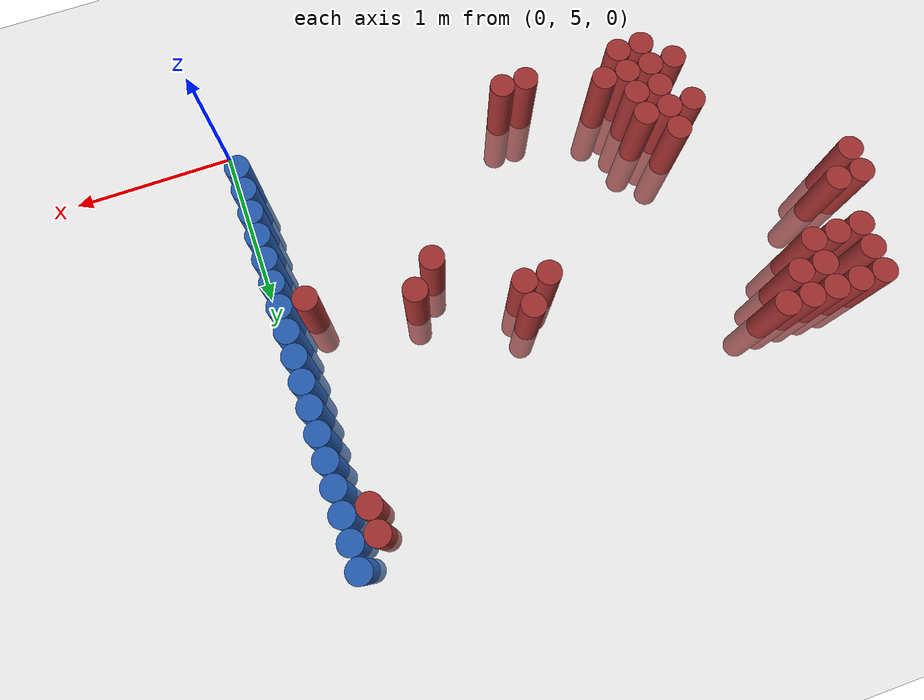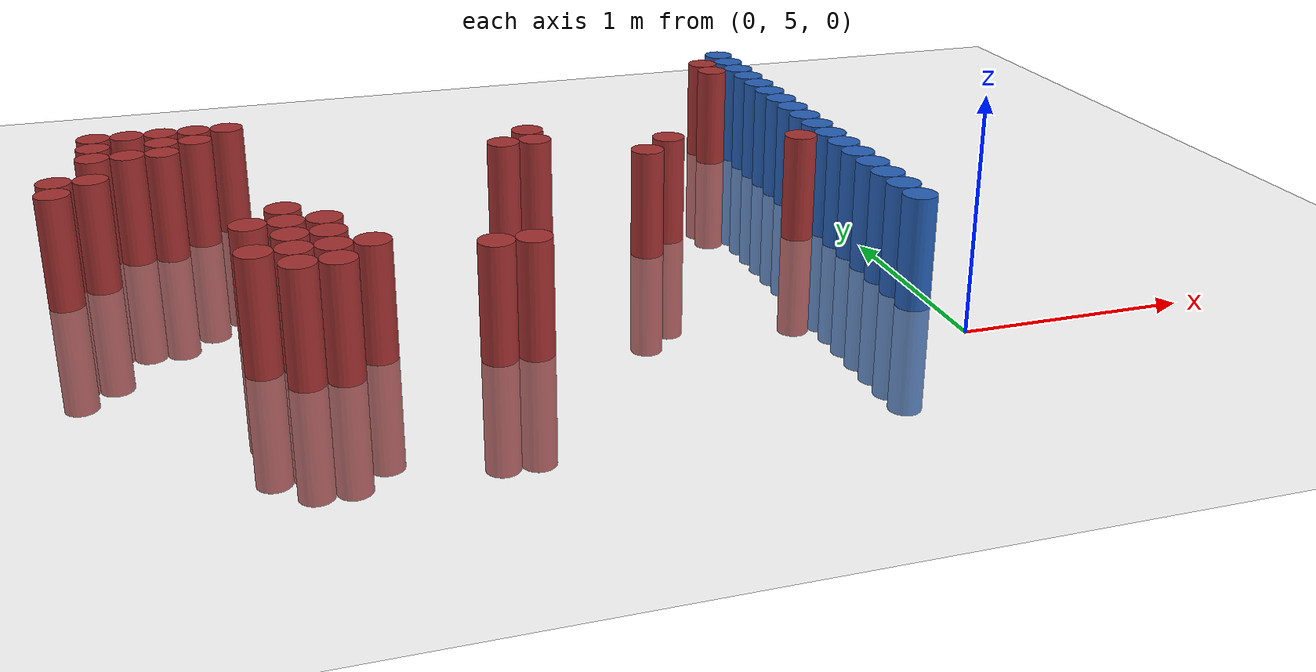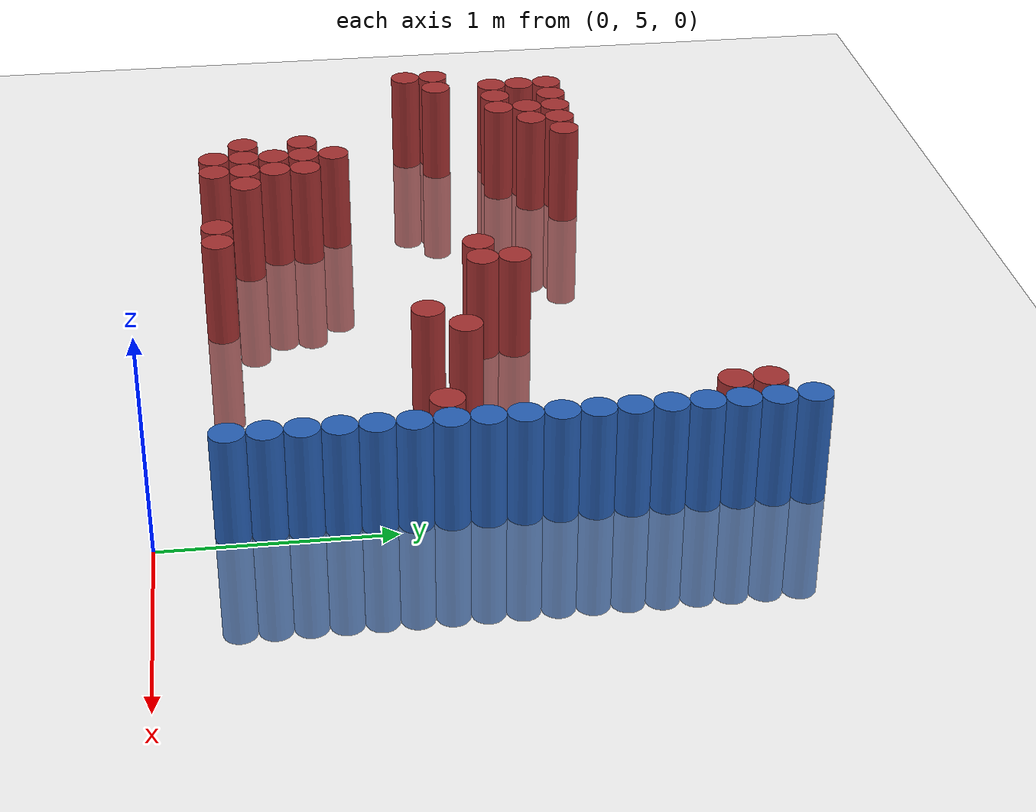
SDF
<sdf version="1.6">
 <world name="default">
  <model name="ground_plane">
   <static>1</static>
   <link name="link">
    <collision name="collision">
     <geometry><plane><normal>0 0 1</normal><size>100 100</size></plane></geometry>
     <surface><friction><ode><mu>100</mu><mu2>50</mu2></ode></friction></surface>
    </collision>
    <visual name="visual">
     <cast_shadows>0</cast_shadows>
     <geometry><plane><normal>0 0 1</normal><size>100 100</size></plane></geometry>
     <material>
      <script><uri>file://media/materials/scripts/gazebo.material</uri><name>Gazebo/Grey</name></script>
     </material>
    </visual>
   </link>
  </model>
  <model name="unit_cylinder_155">
   <static>1</static>
   <pose>-3.525000 6.375000 0.000000 0.000000 0.000000 0.000000</pose>
   <link name="link">
    <inertial>
     <mass>1</mass>
     <inertia><ixx>0.145833</ixx><ixy>0</ixy><ixz>0</ixz><iyy>0.145833</iyy><iyz>0</iyz><izz>0.125</izz></inertia>
    </inertial>
    <collision name="collision">
     <geometry><cylinder><radius>0.075000</radius><length>1</length></cylinder></geometry>
    </collision>
    <visual name="visual">
     <geometry><cylinder><radius>0.075000</radius><length>1</length></cylinder></geometry>
     <material>
      <ambient>0.648000 0.192000 0.192000 1</ambient>
      <diffuse>0.648000 0.192000 0.192000 1</diffuse>
     </material>
     <material>
      <script><name>Gazebo/Grey</name><uri>file://media/materials/scripts/gazebo.material</uri></script>
     </material>
    </visual>
   </link>
  </model>
  <model name="unit_cylinder_156">
   <static>1</static>
   <pose>-3.525000 6.525000 0.000000 0.000000 0.000000 0.000000</pose>
   <link name="link">
    <inertial>
     <mass>1</mass>
     <inertia><ixx>0.145833</ixx><ixy>0</ixy><ixz>0</ixz><iyy>0.145833</iyy><iyz>0</iyz><izz>0.125</izz></inertia>
    </inertial>
    <collision name="collision">
     <geometry><cylinder><radius>0.075000</radius><length>1</length></cylinder></geometry>
    </collision>
    <visual name="visual">
     <geometry><cylinder><radius>0.075000</radius><length>1</length></cylinder></geometry>
     <material>
      <ambient>0.648000 0.192000 0.192000 1</ambient>
      <diffuse>0.648000 0.192000 0.192000 1</diffuse>
     </material>
     <material>
      <script><name>Gazebo/Grey</name><uri>file://media/materials/scripts/gazebo.material</uri></script>
     </material>
    </visual>
   </link>
  </model>
  <model name="unit_cylinder_159">
   <static>1</static>
   <pose>-3.375000 6.525000 0.000000 0.000000 0.000000 0.000000</pose>
   <link name="link">
    <inertial>
     <mass>1</mass>
     <inertia><ixx>0.145833</ixx><ixy>0</ixy><ixz>0</ixz><iyy>0.145833</iyy><iyz>0</iyz><izz>0.125</izz></inertia>
    </inertial>
    <collision name="collision">
     <geometry><cylinder><radius>0.075000</radius><length>1</length></cylinder></geometry>
    </collision>
    <visual name="visual">
     <geometry><cylinder><radius>0.075000</radius><length>1</length></cylinder></geometry>
     <material>
      <ambient>0.648000 0.192000 0.192000 1</ambient>
      <diffuse>0.648000 0.192000 0.192000 1</diffuse>
     </material>
     <material>
      <script><name>Gazebo/Grey</name><uri>file://media/materials/scripts/gazebo.material</uri></script>
     </material>
    </visual>
   </link>
  </model>
  <model name="unit_cylinder_160">
   <static>1</static>
   <pose>-3.375000 6.825000 0.000000 0.000000 0.000000 0.000000</pose>
   <link name="link">
    <inertial>
     <mass>1</mass>
     <inertia><ixx>0.145833</ixx><ixy>0</ixy><ixz>0</ixz><iyy>0.145833</iyy><iyz>0</iyz><izz>0.125</izz></inertia>
    </inertial>
    <collision name="collision">
     <geometry><cylinder><radius>0.075000</radius><length>1</length></cylinder></geometry>
    </collision>
    <visual name="visual">
     <geometry><cylinder><radius>0.075000</radius><length>1</length></cylinder></geometry>
     <material>
      <ambient>0.648000 0.192000 0.192000 1</ambient>
      <diffuse>0.648000 0.192000 0.192000 1</diffuse>
     </material>
     <material>
      <script><name>Gazebo/Grey</name><uri>file://media/materials/scripts/gazebo.material</uri></script>
     </material>
    </visual>
   </link>
  </model>
  <model name="unit_cylinder_161">
   <static>1</static>
   <pose>-3.375000 6.975000 0.000000 0.000000 0.000000 0.000000</pose>
   <link name="link">
    <inertial>
     <mass>1</mass>
     <inertia><ixx>0.145833</ixx><ixy>0</ixy><ixz>0</ixz><iyy>0.145833</iyy><iyz>0</iyz><izz>0.125</izz></inertia>
    </inertial>
    <collision name="collision">
     <geometry><cylinder><radius>0.075000</radius><length>1</length></cylinder></geometry>
    </collision>
    <visual name="visual">
     <geometry><cylinder><radius>0.075000</radius><length>1</length></cylinder></geometry>
     <material>
      <ambient>0.648000 0.192000 0.192000 1</ambient>
      <diffuse>0.648000 0.192000 0.192000 1</diffuse>
     </material>
     <material>
      <script><name>Gazebo/Grey</name><uri>file://media/materials/scripts/gazebo.material</uri></script>
     </material>
    </visual>
   </link>
  </model>
  <model name="unit_cylinder_162">
   <static>1</static>
   <pose>-3.375000 7.125000 0.000000 0.000000 0.000000 0.000000</pose>
   <link name="link">
    <inertial>
     <mass>1</mass>
     <inertia><ixx>0.145833</ixx><ixy>0</ixy><ixz>0</ixz><iyy>0.145833</iyy><iyz>0</iyz><izz>0.125</izz></inertia>
    </inertial>
    <collision name="collision">
     <geometry><cylinder><radius>0.075000</radius><length>1</length></cylinder></geometry>
    </collision>
    <visual name="visual">
     <geometry><cylinder><radius>0.075000</radius><length>1</length></cylinder></geometry>
     <material>
      <ambient>0.648000 0.192000 0.192000 1</ambient>
      <diffuse>0.648000 0.192000 0.192000 1</diffuse>
     </material>
     <material>
      <script><name>Gazebo/Grey</name><uri>file://media/materials/scripts/gazebo.material</uri></script>
     </material>
    </visual>
   </link>
  </model>
  <model name="unit_cylinder_165">
   <static>1</static>
   <pose>-3.225000 6.825000 0.000000 0.000000 0.000000 0.000000</pose>
   <link name="link">
    <inertial>
     <mass>1</mass>
     <inertia><ixx>0.145833</ixx><ixy>0</ixy><ixz>0</ixz><iyy>0.145833</iyy><iyz>0</iyz><izz>0.125</izz></inertia>
    </inertial>
    <collision name="collision">
     <geometry><cylinder><radius>0.075000</radius><length>1</length></cylinder></geometry>
    </collision>
    <visual name="visual">
     <geometry><cylinder><radius>0.075000</radius><length>1</length></cylinder></geometry>
     <material>
      <ambient>0.648000 0.192000 0.192000 1</ambient>
      <diffuse>0.648000 0.192000 0.192000 1</diffuse>
     </material>
     <material>
      <script><name>Gazebo/Grey</name><uri>file://media/materials/scripts/gazebo.material</uri></script>
     </material>
    </visual>
   </link>
  </model>
  <model name="unit_cylinder_166">
   <static>1</static>
   <pose>-3.225000 7.125000 0.000000 0.000000 0.000000 0.000000</pose>
   <link name="link">
    <inertial>
     <mass>1</mass>
     <inertia><ixx>0.145833</ixx><ixy>0</ixy><ixz>0</ixz><iyy>0.145833</iyy><iyz>0</iyz><izz>0.125</izz></inertia>
    </inertial>
    <collision name="collision">
     <geometry><cylinder><radius>0.075000</radius><length>1</length></cylinder></geometry>
    </collision>
    <visual name="visual">
     <geometry><cylinder><radius>0.075000</radius><length>1</length></cylinder></geometry>
     <material>
      <ambient>0.648000 0.192000 0.192000 1</ambient>
      <diffuse>0.648000 0.192000 0.192000 1</diffuse>
     </material>
     <material>
      <script><name>Gazebo/Grey</name><uri>file://media/materials/scripts/gazebo.material</uri></script>
     </material>
    </visual>
   </link>
  </model>
  <model name="unit_cylinder_168">
   <static>1</static>
   <pose>-3.075000 6.825000 0.000000 0.000000 0.000000 0.000000</pose>
   <link name="link">
    <inertial>
     <mass>1</mass>
     <inertia><ixx>0.145833</ixx><ixy>0</ixy><ixz>0</ixz><iyy>0.145833</iyy><iyz>0</iyz><izz>0.125</izz></inertia>
    </inertial>
    <collision name="collision">
     <geometry><cylinder><radius>0.075000</radius><length>1</length></cylinder></geometry>
    </collision>
    <visual name="visual">
     <geometry><cylinder><radius>0.075000</radius><length>1</length></cylinder></geometry>
     <material>
      <ambient>0.648000 0.192000 0.192000 1</ambient>
      <diffuse>0.648000 0.192000 0.192000 1</diffuse>
     </material>
     <material>
      <script><name>Gazebo/Grey</name><uri>file://media/materials/scripts/gazebo.material</uri></script>
     </material>
    </visual>
   </link>
  </model>
  <model name="unit_cylinder_169">
   <static>1</static>
   <pose>-3.075000 6.975000 0.000000 0.000000 0.000000 0.000000</pose>
   <link name="link">
    <inertial>
     <mass>1</mass>
     <inertia><ixx>0.145833</ixx><ixy>0</ixy><ixz>0</ixz><iyy>0.145833</iyy><iyz>0</iyz><izz>0.125</izz></inertia>
    </inertial>
    <collision name="collision">
     <geometry><cylinder><radius>0.075000</radius><length>1</length></cylinder></geometry>
    </collision>
    <visual name="visual">
     <geometry><cylinder><radius>0.075000</radius><length>1</length></cylinder></geometry>
     <material>
      <ambient>0.648000 0.192000 0.192000 1</ambient>
      <diffuse>0.648000 0.192000 0.192000 1</diffuse>
     </material>
     <material>
      <script><name>Gazebo/Grey</name><uri>file://media/materials/scripts/gazebo.material</uri></script>
     </material>
    </visual>
   </link>
  </model>
  <model name="unit_cylinder_170">
   <static>1</static>
   <pose>-3.075000 7.125000 0.000000 0.000000 0.000000 0.000000</pose>
   <link name="link">
    <inertial>
     <mass>1</mass>
     <inertia><ixx>0.145833</ixx><ixy>0</ixy><ixz>0</ixz><iyy>0.145833</iyy><iyz>0</iyz><izz>0.125</izz></inertia>
    </inertial>
    <collision name="collision">
     <geometry><cylinder><radius>0.075000</radius><length>1</length></cylinder></geometry>
    </collision>
    <visual name="visual">
     <geometry><cylinder><radius>0.075000</radius><length>1</length></cylinder></geometry>
     <material>
      <ambient>0.648000 0.192000 0.192000 1</ambient>
      <diffuse>0.648000 0.192000 0.192000 1</diffuse>
     </material>
     <material>
      <script><name>Gazebo/Grey</name><uri>file://media/materials/scripts/gazebo.material</uri></script>
     </material>
    </visual>
   </link>
  </model>
  <model name="unit_cylinder_173">
   <static>1</static>
   <pose>-2.925000 6.975000 0.000000 0.000000 0.000000 0.000000</pose>
   <link name="link">
    <inertial>
     <mass>1</mass>
     <inertia><ixx>0.145833</ixx><ixy>0</ixy><ixz>0</ixz><iyy>0.145833</iyy><iyz>0</iyz><izz>0.125</izz></inertia>
    </inertial>
    <collision name="collision">
     <geometry><cylinder><radius>0.075000</radius><length>1</length></cylinder></geometry>
    </collision>
    <visual name="visual">
     <geometry><cylinder><radius>0.075000</radius><length>1</length></cylinder></geometry>
     <material>
      <ambient>0.648000 0.192000 0.192000 1</ambient>
      <diffuse>0.648000 0.192000 0.192000 1</diffuse>
     </material>
     <material>
      <script><name>Gazebo/Grey</name><uri>file://media/materials/scripts/gazebo.material</uri></script>
     </material>
    </visual>
   </link>
  </model>
  <model name="unit_cylinder_174">
   <static>1</static>
   <pose>-2.925000 7.125000 0.000000 0.000000 0.000000 0.000000</pose>
   <link name="link">
    <inertial>
     <mass>1</mass>
     <inertia><ixx>0.145833</ixx><ixy>0</ixy><ixz>0</ixz><iyy>0.145833</iyy><iyz>0</iyz><izz>0.125</izz></inertia>
    </inertial>
    <collision name="collision">
     <geometry><cylinder><radius>0.075000</radius><length>1</length></cylinder></geometry>
    </collision>
    <visual name="visual">
     <geometry><cylinder><radius>0.075000</radius><length>1</length></cylinder></geometry>
     <material>
      <ambient>0.648000 0.192000 0.192000 1</ambient>
      <diffuse>0.648000 0.192000 0.192000 1</diffuse>
     </material>
     <material>
      <script><name>Gazebo/Grey</name><uri>file://media/materials/scripts/gazebo.material</uri></script>
     </material>
    </visual>
   </link>
  </model>
  <model name="unit_cylinder_177">
   <static>1</static>
   <pose>-2.775000 5.475000 0.000000 0.000000 0.000000 0.000000</pose>
   <link name="link">
    <inertial>
     <mass>1</mass>
     <inertia><ixx>0.145833</ixx><ixy>0</ixy><ixz>0</ixz><iyy>0.145833</iyy><iyz>0</iyz><izz>0.125</izz></inertia>
    </inertial>
    <collision name="collision">
     <geometry><cylinder><radius>0.075000</radius><length>1</length></cylinder></geometry>
    </collision>
    <visual name="visual">
     <geometry><cylinder><radius>0.075000</radius><length>1</length></cylinder></geometry>
     <material>
      <ambient>0.648000 0.192000 0.192000 1</ambient>
      <diffuse>0.648000 0.192000 0.192000 1</diffuse>
     </material>
     <material>
      <script><name>Gazebo/Grey</name><uri>file://media/materials/scripts/gazebo.material</uri></script>
     </material>
    </visual>
   </link>
  </model>
  <model name="unit_cylinder_178">
   <static>1</static>
   <pose>-2.775000 5.775000 0.000000 0.000000 0.000000 0.000000</pose>
   <link name="link">
    <inertial>
     <mass>1</mass>
     <inertia><ixx>0.145833</ixx><ixy>0</ixy><ixz>0</ixz><iyy>0.145833</iyy><iyz>0</iyz><izz>0.125</izz></inertia>
    </inertial>
    <collision name="collision">
     <geometry><cylinder><radius>0.075000</radius><length>1</length></cylinder></geometry>
    </collision>
    <visual name="visual">
     <geometry><cylinder><radius>0.075000</radius><length>1</length></cylinder></geometry>
     <material>
      <ambient>0.648000 0.192000 0.192000 1</ambient>
      <diffuse>0.648000 0.192000 0.192000 1</diffuse>
     </material>
     <material>
      <script><name>Gazebo/Grey</name><uri>file://media/materials/scripts/gazebo.material</uri></script>
     </material>
    </visual>
   </link>
  </model>
  <model name="unit_cylinder_179">
   <static>1</static>
   <pose>-2.775000 7.125000 0.000000 0.000000 0.000000 0.000000</pose>
   <link name="link">
    <inertial>
     <mass>1</mass>
     <inertia><ixx>0.145833</ixx><ixy>0</ixy><ixz>0</ixz><iyy>0.145833</iyy><iyz>0</iyz><izz>0.125</izz></inertia>
    </inertial>
    <collision name="collision">
     <geometry><cylinder><radius>0.075000</radius><length>1</length></cylinder></geometry>
    </collision>
    <visual name="visual">
     <geometry><cylinder><radius>0.075000</radius><length>1</length></cylinder></geometry>
     <material>
      <ambient>0.648000 0.192000 0.192000 1</ambient>
      <diffuse>0.648000 0.192000 0.192000 1</diffuse>
     </material>
     <material>
      <script><name>Gazebo/Grey</name><uri>file://media/materials/scripts/gazebo.material</uri></script>
     </material>
    </visual>
   </link>
  </model>
  <model name="unit_cylinder_182">
   <static>1</static>
   <pose>-2.625000 5.325000 0.000000 0.000000 0.000000 0.000000</pose>
   <link name="link">
    <inertial>
     <mass>1</mass>
     <inertia><ixx>0.145833</ixx><ixy>0</ixy><ixz>0</ixz><iyy>0.145833</iyy><iyz>0</iyz><izz>0.125</izz></inertia>
    </inertial>
    <collision name="collision">
     <geometry><cylinder><radius>0.075000</radius><length>1</length></cylinder></geometry>
    </collision>
    <visual name="visual">
     <geometry><cylinder><radius>0.075000</radius><length>1</length></cylinder></geometry>
     <material>
      <ambient>0.648000 0.192000 0.192000 1</ambient>
      <diffuse>0.648000 0.192000 0.192000 1</diffuse>
     </material>
     <material>
      <script><name>Gazebo/Grey</name><uri>file://media/materials/scripts/gazebo.material</uri></script>
     </material>
    </visual>
   </link>
  </model>
  <model name="unit_cylinder_183">
   <static>1</static>
   <pose>-2.625000 5.475000 0.000000 0.000000 0.000000 0.000000</pose>
   <link name="link">
    <inertial>
     <mass>1</mass>
     <inertia><ixx>0.145833</ixx><ixy>0</ixy><ixz>0</ixz><iyy>0.145833</iyy><iyz>0</iyz><izz>0.125</izz></inertia>
    </inertial>
    <collision name="collision">
     <geometry><cylinder><radius>0.075000</radius><length>1</length></cylinder></geometry>
    </collision>
    <visual name="visual">
     <geometry><cylinder><radius>0.075000</radius><length>1</length></cylinder></geometry>
     <material>
      <ambient>0.648000 0.192000 0.192000 1</ambient>
      <diffuse>0.648000 0.192000 0.192000 1</diffuse>
     </material>
     <material>
      <script><name>Gazebo/Grey</name><uri>file://media/materials/scripts/gazebo.material</uri></script>
     </material>
    </visual>
   </link>
  </model>
  <model name="unit_cylinder_184">
   <static>1</static>
   <pose>-2.625000 5.625000 0.000000 0.000000 0.000000 0.000000</pose>
   <link name="link">
    <inertial>
     <mass>1</mass>
     <inertia><ixx>0.145833</ixx><ixy>0</ixy><ixz>0</ixz><iyy>0.145833</iyy><iyz>0</iyz><izz>0.125</izz></inertia>
    </inertial>
    <collision name="collision">
     <geometry><cylinder><radius>0.075000</radius><length>1</length></cylinder></geometry>
    </collision>
    <visual name="visual">
     <geometry><cylinder><radius>0.075000</radius><length>1</length></cylinder></geometry>
     <material>
      <ambient>0.648000 0.192000 0.192000 1</ambient>
      <diffuse>0.648000 0.192000 0.192000 1</diffuse>
     </material>
     <material>
      <script><name>Gazebo/Grey</name><uri>file://media/materials/scripts/gazebo.material</uri></script>
     </material>
    </visual>
   </link>
  </model>
  <model name="unit_cylinder_185">
   <static>1</static>
   <pose>-2.625000 5.775000 0.000000 0.000000 0.000000 0.000000</pose>
   <link name="link">
    <inertial>
     <mass>1</mass>
     <inertia><ixx>0.145833</ixx><ixy>0</ixy><ixz>0</ixz><iyy>0.145833</iyy><iyz>0</iyz><izz>0.125</izz></inertia>
    </inertial>
    <collision name="collision">
     <geometry><cylinder><radius>0.075000</radius><length>1</length></cylinder></geometry>
    </collision>
    <visual name="visual">
     <geometry><cylinder><radius>0.075000</radius><length>1</length></cylinder></geometry>
     <material>
      <ambient>0.648000 0.192000 0.192000 1</ambient>
      <diffuse>0.648000 0.192000 0.192000 1</diffuse>
     </material>
     <material>
      <script><name>Gazebo/Grey</name><uri>file://media/materials/scripts/gazebo.material</uri></script>
     </material>
    </visual>
   </link>
  </model>
  <model name="unit_cylinder_186">
   <static>1</static>
   <pose>-2.625000 5.925000 0.000000 0.000000 0.000000 0.000000</pose>
   <link name="link">
    <inertial>
     <mass>1</mass>
     <inertia><ixx>0.145833</ixx><ixy>0</ixy><ixz>0</ixz><iyy>0.145833</iyy><iyz>0</iyz><izz>0.125</izz></inertia>
    </inertial>
    <collision name="collision">
     <geometry><cylinder><radius>0.075000</radius><length>1</length></cylinder></geometry>
    </collision>
    <visual name="visual">
     <geometry><cylinder><radius>0.075000</radius><length>1</length></cylinder></geometry>
     <material>
      <ambient>0.648000 0.192000 0.192000 1</ambient>
      <diffuse>0.648000 0.192000 0.192000 1</diffuse>
     </material>
     <material>
      <script><name>Gazebo/Grey</name><uri>file://media/materials/scripts/gazebo.material</uri></script>
     </material>
    </visual>
   </link>
  </model>
  <model name="unit_cylinder_191">
   <static>1</static>
   <pose>-2.475000 5.325000 0.000000 0.000000 0.000000 0.000000</pose>
   <link name="link">
    <inertial>
     <mass>1</mass>
     <inertia><ixx>0.145833</ixx><ixy>0</ixy><ixz>0</ixz><iyy>0.145833</iyy><iyz>0</iyz><izz>0.125</izz></inertia>
    </inertial>
    <collision name="collision">
     <geometry><cylinder><radius>0.075000</radius><length>1</length></cylinder></geometry>
    </collision>
    <visual name="visual">
     <geometry><cylinder><radius>0.075000</radius><length>1</length></cylinder></geometry>
     <material>
      <ambient>0.648000 0.192000 0.192000 1</ambient>
      <diffuse>0.648000 0.192000 0.192000 1</diffuse>
     </material>
     <material>
      <script><name>Gazebo/Grey</name><uri>file://media/materials/scripts/gazebo.material</uri></script>
     </material>
    </visual>
   </link>
  </model>
  <model name="unit_cylinder_192">
   <static>1</static>
   <pose>-2.475000 5.475000 0.000000 0.000000 0.000000 0.000000</pose>
   <link name="link">
    <inertial>
     <mass>1</mass>
     <inertia><ixx>0.145833</ixx><ixy>0</ixy><ixz>0</ixz><iyy>0.145833</iyy><iyz>0</iyz><izz>0.125</izz></inertia>
    </inertial>
    <collision name="collision">
     <geometry><cylinder><radius>0.075000</radius><length>1</length></cylinder></geometry>
    </collision>
    <visual name="visual">
     <geometry><cylinder><radius>0.075000</radius><length>1</length></cylinder></geometry>
     <material>
      <ambient>0.648000 0.192000 0.192000 1</ambient>
      <diffuse>0.648000 0.192000 0.192000 1</diffuse>
     </material>
     <material>
      <script><name>Gazebo/Grey</name><uri>file://media/materials/scripts/gazebo.material</uri></script>
     </material>
    </visual>
   </link>
  </model>
  <model name="unit_cylinder_193">
   <static>1</static>
   <pose>-2.475000 5.625000 0.000000 0.000000 0.000000 0.000000</pose>
   <link name="link">
    <inertial>
     <mass>1</mass>
     <inertia><ixx>0.145833</ixx><ixy>0</ixy><ixz>0</ixz><iyy>0.145833</iyy><iyz>0</iyz><izz>0.125</izz></inertia>
    </inertial>
    <collision name="collision">
     <geometry><cylinder><radius>0.075000</radius><length>1</length></cylinder></geometry>
    </collision>
    <visual name="visual">
     <geometry><cylinder><radius>0.075000</radius><length>1</length></cylinder></geometry>
     <material>
      <ambient>0.648000 0.192000 0.192000 1</ambient>
      <diffuse>0.648000 0.192000 0.192000 1</diffuse>
     </material>
     <material>
      <script><name>Gazebo/Grey</name><uri>file://media/materials/scripts/gazebo.material</uri></script>
     </material>
    </visual>
   </link>
  </model>
  <model name="unit_cylinder_194">
   <static>1</static>
   <pose>-2.475000 5.775000 0.000000 0.000000 0.000000 0.000000</pose>
   <link name="link">
    <inertial>
     <mass>1</mass>
     <inertia><ixx>0.145833</ixx><ixy>0</ixy><ixz>0</ixz><iyy>0.145833</iyy><iyz>0</iyz><izz>0.125</izz></inertia>
    </inertial>
    <collision name="collision">
     <geometry><cylinder><radius>0.075000</radius><length>1</length></cylinder></geometry>
    </collision>
    <visual name="visual">
     <geometry><cylinder><radius>0.075000</radius><length>1</length></cylinder></geometry>
     <material>
      <ambient>0.648000 0.192000 0.192000 1</ambient>
      <diffuse>0.648000 0.192000 0.192000 1</diffuse>
     </material>
     <material>
      <script><name>Gazebo/Grey</name><uri>file://media/materials/scripts/gazebo.material</uri></script>
     </material>
    </visual>
   </link>
  </model>
  <model name="unit_cylinder_196">
   <static>1</static>
   <pose>-2.325000 5.475000 0.000000 0.000000 0.000000 0.000000</pose>
   <link name="link">
    <inertial>
     <mass>1</mass>
     <inertia><ixx>0.145833</ixx><ixy>0</ixy><ixz>0</ixz><iyy>0.145833</iyy><iyz>0</iyz><izz>0.125</izz></inertia>
    </inertial>
    <collision name="collision">
     <geometry><cylinder><radius>0.075000</radius><length>1</length></cylinder></geometry>
    </collision>
    <visual name="visual">
     <geometry><cylinder><radius>0.075000</radius><length>1</length></cylinder></geometry>
     <material>
      <ambient>0.648000 0.192000 0.192000 1</ambient>
      <diffuse>0.648000 0.192000 0.192000 1</diffuse>
     </material>
     <material>
      <script><name>Gazebo/Grey</name><uri>file://media/materials/scripts/gazebo.material</uri></script>
     </material>
    </visual>
   </link>
  </model>
  <model name="unit_cylinder_201">
   <static>1</static>
   <pose>-1.875000 5.325000 0.000000 0.000000 0.000000 0.000000</pose>
   <link name="link">
    <inertial>
     <mass>1</mass>
     <inertia><ixx>0.145833</ixx><ixy>0</ixy><ixz>0</ixz><iyy>0.145833</iyy><iyz>0</iyz><izz>0.125</izz></inertia>
    </inertial>
    <collision name="collision">
     <geometry><cylinder><radius>0.075000</radius><length>1</length></cylinder></geometry>
    </collision>
    <visual name="visual">
     <geometry><cylinder><radius>0.075000</radius><length>1</length></cylinder></geometry>
     <material>
      <ambient>0.648000 0.192000 0.192000 1</ambient>
      <diffuse>0.648000 0.192000 0.192000 1</diffuse>
     </material>
     <material>
      <script><name>Gazebo/Grey</name><uri>file://media/materials/scripts/gazebo.material</uri></script>
     </material>
    </visual>
   </link>
  </model>
  <model name="unit_cylinder_203">
   <static>1</static>
   <pose>-1.725000 5.325000 0.000000 0.000000 0.000000 0.000000</pose>
   <link name="link">
    <inertial>
     <mass>1</mass>
     <inertia><ixx>0.145833</ixx><ixy>0</ixy><ixz>0</ixz><iyy>0.145833</iyy><iyz>0</iyz><izz>0.125</izz></inertia>
    </inertial>
    <collision name="collision">
     <geometry><cylinder><radius>0.075000</radius><length>1</length></cylinder></geometry>
    </collision>
    <visual name="visual">
     <geometry><cylinder><radius>0.075000</radius><length>1</length></cylinder></geometry>
     <material>
      <ambient>0.648000 0.192000 0.192000 1</ambient>
      <diffuse>0.648000 0.192000 0.192000 1</diffuse>
     </material>
     <material>
      <script><name>Gazebo/Grey</name><uri>file://media/materials/scripts/gazebo.material</uri></script>
     </material>
    </visual>
   </link>
  </model>
  <model name="unit_cylinder_205">
   <static>1</static>
   <pose>-1.575000 6.525000 0.000000 0.000000 0.000000 0.000000</pose>
   <link name="link">
    <inertial>
     <mass>1</mass>
     <inertia><ixx>0.145833</ixx><ixy>0</ixy><ixz>0</ixz><iyy>0.145833</iyy><iyz>0</iyz><izz>0.125</izz></inertia>
    </inertial>
    <collision name="collision">
     <geometry><cylinder><radius>0.075000</radius><length>1</length></cylinder></geometry>
    </collision>
    <visual name="visual">
     <geometry><cylinder><radius>0.075000</radius><length>1</length></cylinder></geometry>
     <material>
      <ambient>0.648000 0.192000 0.192000 1</ambient>
      <diffuse>0.648000 0.192000 0.192000 1</diffuse>
     </material>
     <material>
      <script><name>Gazebo/Grey</name><uri>file://media/materials/scripts/gazebo.material</uri></script>
     </material>
    </visual>
   </link>
  </model>
  <model name="unit_cylinder_206">
   <static>1</static>
   <pose>-1.425000 6.525000 0.000000 0.000000 0.000000 0.000000</pose>
   <link name="link">
    <inertial>
     <mass>1</mass>
     <inertia><ixx>0.145833</ixx><ixy>0</ixy><ixz>0</ixz><iyy>0.145833</iyy><iyz>0</iyz><izz>0.125</izz></inertia>
    </inertial>
    <collision name="collision">
     <geometry><cylinder><radius>0.075000</radius><length>1</length></cylinder></geometry>
    </collision>
    <visual name="visual">
     <geometry><cylinder><radius>0.075000</radius><length>1</length></cylinder></geometry>
     <material>
      <ambient>0.648000 0.192000 0.192000 1</ambient>
      <diffuse>0.648000 0.192000 0.192000 1</diffuse>
     </material>
     <material>
      <script><name>Gazebo/Grey</name><uri>file://media/materials/scripts/gazebo.material</uri></script>
     </material>
    </visual>
   </link>
  </model>
  <model name="unit_cylinder_207">
   <static>1</static>
   <pose>-1.425000 6.675000 0.000000 0.000000 0.000000 0.000000</pose>
   <link name="link">
    <inertial>
     <mass>1</mass>
     <inertia><ixx>0.145833</ixx><ixy>0</ixy><ixz>0</ixz><iyy>0.145833</iyy><iyz>0</iyz><izz>0.125</izz></inertia>
    </inertial>
    <collision name="collision">
     <geometry><cylinder><radius>0.075000</radius><length>1</length></cylinder></geometry>
    </collision>
    <visual name="visual">
     <geometry><cylinder><radius>0.075000</radius><length>1</length></cylinder></geometry>
     <material>
      <ambient>0.648000 0.192000 0.192000 1</ambient>
      <diffuse>0.648000 0.192000 0.192000 1</diffuse>
     </material>
     <material>
      <script><name>Gazebo/Grey</name><uri>file://media/materials/scripts/gazebo.material</uri></script>
     </material>
    </visual>
   </link>
  </model>
  <model name="unit_cylinder_214">
   <static>1</static>
   <pose>-0.975000 6.225000 0.000000 0.000000 0.000000 0.000000</pose>
   <link name="link">
    <inertial>
     <mass>1</mass>
     <inertia><ixx>0.145833</ixx><ixy>0</ixy><ixz>0</ixz><iyy>0.145833</iyy><iyz>0</iyz><izz>0.125</izz></inertia>
    </inertial>
    <collision name="collision">
     <geometry><cylinder><radius>0.075000</radius><length>1</length></cylinder></geometry>
    </collision>
    <visual name="visual">
     <geometry><cylinder><radius>0.075000</radius><length>1</length></cylinder></geometry>
     <material>
      <ambient>0.648000 0.192000 0.192000 1</ambient>
      <diffuse>0.648000 0.192000 0.192000 1</diffuse>
     </material>
     <material>
      <script><name>Gazebo/Grey</name><uri>file://media/materials/scripts/gazebo.material</uri></script>
     </material>
    </visual>
   </link>
  </model>
  <model name="unit_cylinder_219">
   <static>1</static>
   <pose>-0.825000 6.375000 0.000000 0.000000 0.000000 0.000000</pose>
   <link name="link">
    <inertial>
     <mass>1</mass>
     <inertia><ixx>0.145833</ixx><ixy>0</ixy><ixz>0</ixz><iyy>0.145833</iyy><iyz>0</iyz><izz>0.125</izz></inertia>
    </inertial>
    <collision name="collision">
     <geometry><cylinder><radius>0.075000</radius><length>1</length></cylinder></geometry>
    </collision>
    <visual name="visual">
     <geometry><cylinder><radius>0.075000</radius><length>1</length></cylinder></geometry>
     <material>
      <ambient>0.648000 0.192000 0.192000 1</ambient>
      <diffuse>0.648000 0.192000 0.192000 1</diffuse>
     </material>
     <material>
      <script><name>Gazebo/Grey</name><uri>file://media/materials/scripts/gazebo.material</uri></script>
     </material>
    </visual>
   </link>
  </model>
  <model name="unit_cylinder_227">
   <static>1</static>
   <pose>-0.225000 6.225000 0.000000 0.000000 0.000000 0.000000</pose>
   <link name="link">
    <inertial>
     <mass>1</mass>
     <inertia><ixx>0.145833</ixx><ixy>0</ixy><ixz>0</ixz><iyy>0.145833</iyy><iyz>0</iyz><izz>0.125</izz></inertia>
    </inertial>
    <collision name="collision">
     <geometry><cylinder><radius>0.075000</radius><length>1</length></cylinder></geometry>
    </collision>
    <visual name="visual">
     <geometry><cylinder><radius>0.075000</radius><length>1</length></cylinder></geometry>
     <material>
      <ambient>0.648000 0.192000 0.192000 1</ambient>
      <diffuse>0.648000 0.192000 0.192000 1</diffuse>
     </material>
     <material>
      <script><name>Gazebo/Grey</name><uri>file://media/materials/scripts/gazebo.material</uri></script>
     </material>
    </visual>
   </link>
  </model>
  <model name="unit_cylinder_228">
   <static>1</static>
   <pose>-0.225000 7.425000 0.000000 0.000000 0.000000 0.000000</pose>
   <link name="link">
    <inertial>
     <mass>1</mass>
     <inertia><ixx>0.145833</ixx><ixy>0</ixy><ixz>0</ixz><iyy>0.145833</iyy><iyz>0</iyz><izz>0.125</izz></inertia>
    </inertial>
    <collision name="collision">
     <geometry><cylinder><radius>0.075000</radius><length>1</length></cylinder></geometry>
    </collision>
    <visual name="visual">
     <geometry><cylinder><radius>0.075000</radius><length>1</length></cylinder></geometry>
     <material>
      <ambient>0.648000 0.192000 0.192000 1</ambient>
      <diffuse>0.648000 0.192000 0.192000 1</diffuse>
     </material>
     <material>
      <script><name>Gazebo/Grey</name><uri>file://media/materials/scripts/gazebo.material</uri></script>
     </material>
    </visual>
   </link>
  </model>
  <model name="unit_cylinder_229">
   <static>1</static>
   <pose>-0.225000 7.575000 0.000000 0.000000 0.000000 0.000000</pose>
   <link name="link">
    <inertial>
     <mass>1</mass>
     <inertia><ixx>0.145833</ixx><ixy>0</ixy><ixz>0</ixz><iyy>0.145833</iyy><iyz>0</iyz><izz>0.125</izz></inertia>
    </inertial>
    <collision name="collision">
     <geometry><cylinder><radius>0.075000</radius><length>1</length></cylinder></geometry>
    </collision>
    <visual name="visual">
     <geometry><cylinder><radius>0.075000</radius><length>1</length></cylinder></geometry>
     <material>
      <ambient>0.648000 0.192000 0.192000 1</ambient>
      <diffuse>0.648000 0.192000 0.192000 1</diffuse>
     </material>
     <material>
      <script><name>Gazebo/Grey</name><uri>file://media/materials/scripts/gazebo.material</uri></script>
     </material>
    </visual>
   </link>
  </model>
  <model name="unit_cylinder_238">
   <static>1</static>
   <pose>-0.075000 5.325000 0.000000 0.000000 0.000000 0.000000</pose>
   <link name="link">
    <inertial>
     <mass>1</mass>
     <inertia><ixx>0.145833</ixx><ixy>0</ixy><ixz>0</ixz><iyy>0.145833</iyy><iyz>0</iyz><izz>0.125</izz></inertia>
    </inertial>
    <collision name="collision">
     <geometry><cylinder><radius>0.075000</radius><length>1</length></cylinder></geometry>
    </collision>
    <visual name="visual">
     <geometry><cylinder><radius>0.075000</radius><length>1</length></cylinder></geometry>
     <material>
      <ambient>0.152000 0.379000 0.720000 1</ambient>
      <diffuse>0.152000 0.379000 0.720000 1</diffuse>
     </material>
     <material>
      <script><name>Gazebo/Grey</name><uri>file://media/materials/scripts/gazebo.material</uri></script>
     </material>
    </visual>
   </link>
  </model>
  <model name="unit_cylinder_239">
   <static>1</static>
   <pose>-0.075000 5.475000 0.000000 0.000000 0.000000 0.000000</pose>
   <link name="link">
    <inertial>
     <mass>1</mass>
     <inertia><ixx>0.145833</ixx><ixy>0</ixy><ixz>0</ixz><iyy>0.145833</iyy><iyz>0</iyz><izz>0.125</izz></inertia>
    </inertial>
    <collision name="collision">
     <geometry><cylinder><radius>0.075000</radius><length>1</length></cylinder></geometry>
    </collision>
    <visual name="visual">
     <geometry><cylinder><radius>0.075000</radius><length>1</length></cylinder></geometry>
     <material>
      <ambient>0.152000 0.379000 0.720000 1</ambient>
      <diffuse>0.152000 0.379000 0.720000 1</diffuse>
     </material>
     <material>
      <script><name>Gazebo/Grey</name><uri>file://media/materials/scripts/gazebo.material</uri></script>
     </material>
    </visual>
   </link>
  </model>
  <model name="unit_cylinder_240">
   <static>1</static>
   <pose>-0.075000 5.625000 0.000000 0.000000 0.000000 0.000000</pose>
   <link name="link">
    <inertial>
     <mass>1</mass>
     <inertia><ixx>0.145833</ixx><ixy>0</ixy><ixz>0</ixz><iyy>0.145833</iyy><iyz>0</iyz><izz>0.125</izz></inertia>
    </inertial>
    <collision name="collision">
     <geometry><cylinder><radius>0.075000</radius><length>1</length></cylinder></geometry>
    </collision>
    <visual name="visual">
     <geometry><cylinder><radius>0.075000</radius><length>1</length></cylinder></geometry>
     <material>
      <ambient>0.152000 0.379000 0.720000 1</ambient>
      <diffuse>0.152000 0.379000 0.720000 1</diffuse>
     </material>
     <material>
      <script><name>Gazebo/Grey</name><uri>file://media/materials/scripts/gazebo.material</uri></script>
     </material>
    </visual>
   </link>
  </model>
  <model name="unit_cylinder_241">
   <static>1</static>
   <pose>-0.075000 5.775000 0.000000 0.000000 0.000000 0.000000</pose>
   <link name="link">
    <inertial>
     <mass>1</mass>
     <inertia><ixx>0.145833</ixx><ixy>0</ixy><ixz>0</ixz><iyy>0.145833</iyy><iyz>0</iyz><izz>0.125</izz></inertia>
    </inertial>
    <collision name="collision">
     <geometry><cylinder><radius>0.075000</radius><length>1</length></cylinder></geometry>
    </collision>
    <visual name="visual">
     <geometry><cylinder><radius>0.075000</radius><length>1</length></cylinder></geometry>
     <material>
      <ambient>0.152000 0.379000 0.720000 1</ambient>
      <diffuse>0.152000 0.379000 0.720000 1</diffuse>
     </material>
     <material>
      <script><name>Gazebo/Grey</name><uri>file://media/materials/scripts/gazebo.material</uri></script>
     </material>
    </visual>
   </link>
  </model>
  <model name="unit_cylinder_242">
   <static>1</static>
   <pose>-0.075000 5.925000 0.000000 0.000000 0.000000 0.000000</pose>
   <link name="link">
    <inertial>
     <mass>1</mass>
     <inertia><ixx>0.145833</ixx><ixy>0</ixy><ixz>0</ixz><iyy>0.145833</iyy><iyz>0</iyz><izz>0.125</izz></inertia>
    </inertial>
    <collision name="collision">
     <geometry><cylinder><radius>0.075000</radius><length>1</length></cylinder></geometry>
    </collision>
    <visual name="visual">
     <geometry><cylinder><radius>0.075000</radius><length>1</length></cylinder></geometry>
     <material>
      <ambient>0.152000 0.379000 0.720000 1</ambient>
      <diffuse>0.152000 0.379000 0.720000 1</diffuse>
     </material>
     <material>
      <script><name>Gazebo/Grey</name><uri>file://media/materials/scripts/gazebo.material</uri></script>
     </material>
    </visual>
   </link>
  </model>
  <model name="unit_cylinder_243">
   <static>1</static>
   <pose>-0.075000 6.075000 0.000000 0.000000 0.000000 0.000000</pose>
   <link name="link">
    <inertial>
     <mass>1</mass>
     <inertia><ixx>0.145833</ixx><ixy>0</ixy><ixz>0</ixz><iyy>0.145833</iyy><iyz>0</iyz><izz>0.125</izz></inertia>
    </inertial>
    <collision name="collision">
     <geometry><cylinder><radius>0.075000</radius><length>1</length></cylinder></geometry>
    </collision>
    <visual name="visual">
     <geometry><cylinder><radius>0.075000</radius><length>1</length></cylinder></geometry>
     <material>
      <ambient>0.152000 0.379000 0.720000 1</ambient>
      <diffuse>0.152000 0.379000 0.720000 1</diffuse>
     </material>
     <material>
      <script><name>Gazebo/Grey</name><uri>file://media/materials/scripts/gazebo.material</uri></script>
     </material>
    </visual>
   </link>
  </model>
  <model name="unit_cylinder_244">
   <static>1</static>
   <pose>-0.075000 6.225000 0.000000 0.000000 0.000000 0.000000</pose>
   <link name="link">
    <inertial>
     <mass>1</mass>
     <inertia><ixx>0.145833</ixx><ixy>0</ixy><ixz>0</ixz><iyy>0.145833</iyy><iyz>0</iyz><izz>0.125</izz></inertia>
    </inertial>
    <collision name="collision">
     <geometry><cylinder><radius>0.075000</radius><length>1</length></cylinder></geometry>
    </collision>
    <visual name="visual">
     <geometry><cylinder><radius>0.075000</radius><length>1</length></cylinder></geometry>
     <material>
      <ambient>0.152000 0.379000 0.720000 1</ambient>
      <diffuse>0.152000 0.379000 0.720000 1</diffuse>
     </material>
     <material>
      <script><name>Gazebo/Grey</name><uri>file://media/materials/scripts/gazebo.material</uri></script>
     </material>
    </visual>
   </link>
  </model>
  <model name="unit_cylinder_245">
   <static>1</static>
   <pose>-0.075000 6.375000 0.000000 0.000000 0.000000 0.000000</pose>
   <link name="link">
    <inertial>
     <mass>1</mass>
     <inertia><ixx>0.145833</ixx><ixy>0</ixy><ixz>0</ixz><iyy>0.145833</iyy><iyz>0</iyz><izz>0.125</izz></inertia>
    </inertial>
    <collision name="collision">
     <geometry><cylinder><radius>0.075000</radius><length>1</length></cylinder></geometry>
    </collision>
    <visual name="visual">
     <geometry><cylinder><radius>0.075000</radius><length>1</length></cylinder></geometry>
     <material>
      <ambient>0.152000 0.379000 0.720000 1</ambient>
      <diffuse>0.152000 0.379000 0.720000 1</diffuse>
     </material>
     <material>
      <script><name>Gazebo/Grey</name><uri>file://media/materials/scripts/gazebo.material</uri></script>
     </material>
    </visual>
   </link>
  </model>
  <model name="unit_cylinder_246">
   <static>1</static>
   <pose>-0.075000 6.525000 0.000000 0.000000 0.000000 0.000000</pose>
   <link name="link">
    <inertial>
     <mass>1</mass>
     <inertia><ixx>0.145833</ixx><ixy>0</ixy><ixz>0</ixz><iyy>0.145833</iyy><iyz>0</iyz><izz>0.125</izz></inertia>
    </inertial>
    <collision name="collision">
     <geometry><cylinder><radius>0.075000</radius><length>1</length></cylinder></geometry>
    </collision>
    <visual name="visual">
     <geometry><cylinder><radius>0.075000</radius><length>1</length></cylinder></geometry>
     <material>
      <ambient>0.152000 0.379000 0.720000 1</ambient>
      <diffuse>0.152000 0.379000 0.720000 1</diffuse>
     </material>
     <material>
      <script><name>Gazebo/Grey</name><uri>file://media/materials/scripts/gazebo.material</uri></script>
     </material>
    </visual>
   </link>
  </model>
  <model name="unit_cylinder_247">
   <static>1</static>
   <pose>-0.075000 6.675000 0.000000 0.000000 0.000000 0.000000</pose>
   <link name="link">
    <inertial>
     <mass>1</mass>
     <inertia><ixx>0.145833</ixx><ixy>0</ixy><ixz>0</ixz><iyy>0.145833</iyy><iyz>0</iyz><izz>0.125</izz></inertia>
    </inertial>
    <collision name="collision">
     <geometry><cylinder><radius>0.075000</radius><length>1</length></cylinder></geometry>
    </collision>
    <visual name="visual">
     <geometry><cylinder><radius>0.075000</radius><length>1</length></cylinder></geometry>
     <material>
      <ambient>0.152000 0.379000 0.720000 1</ambient>
      <diffuse>0.152000 0.379000 0.720000 1</diffuse>
     </material>
     <material>
      <script><name>Gazebo/Grey</name><uri>file://media/materials/scripts/gazebo.material</uri></script>
     </material>
    </visual>
   </link>
  </model>
  <model name="unit_cylinder_248">
   <static>1</static>
   <pose>-0.075000 6.825000 0.000000 0.000000 0.000000 0.000000</pose>
   <link name="link">
    <inertial>
     <mass>1</mass>
     <inertia><ixx>0.145833</ixx><ixy>0</ixy><ixz>0</ixz><iyy>0.145833</iyy><iyz>0</iyz><izz>0.125</izz></inertia>
    </inertial>
    <collision name="collision">
     <geometry><cylinder><radius>0.075000</radius><length>1</length></cylinder></geometry>
    </collision>
    <visual name="visual">
     <geometry><cylinder><radius>0.075000</radius><length>1</length></cylinder></geometry>
     <material>
      <ambient>0.152000 0.379000 0.720000 1</ambient>
      <diffuse>0.152000 0.379000 0.720000 1</diffuse>
     </material>
     <material>
      <script><name>Gazebo/Grey</name><uri>file://media/materials/scripts/gazebo.material</uri></script>
     </material>
    </visual>
   </link>
  </model>
  <model name="unit_cylinder_249">
   <static>1</static>
   <pose>-0.075000 6.975000 0.000000 0.000000 0.000000 0.000000</pose>
   <link name="link">
    <inertial>
     <mass>1</mass>
     <inertia><ixx>0.145833</ixx><ixy>0</ixy><ixz>0</ixz><iyy>0.145833</iyy><iyz>0</iyz><izz>0.125</izz></inertia>
    </inertial>
    <collision name="collision">
     <geometry><cylinder><radius>0.075000</radius><length>1</length></cylinder></geometry>
    </collision>
    <visual name="visual">
     <geometry><cylinder><radius>0.075000</radius><length>1</length></cylinder></geometry>
     <material>
      <ambient>0.152000 0.379000 0.720000 1</ambient>
      <diffuse>0.152000 0.379000 0.720000 1</diffuse>
     </material>
     <material>
      <script><name>Gazebo/Grey</name><uri>file://media/materials/scripts/gazebo.material</uri></script>
     </material>
    </visual>
   </link>
  </model>
  <model name="unit_cylinder_250">
   <static>1</static>
   <pose>-0.075000 7.125000 0.000000 0.000000 0.000000 0.000000</pose>
   <link name="link">
    <inertial>
     <mass>1</mass>
     <inertia><ixx>0.145833</ixx><ixy>0</ixy><ixz>0</ixz><iyy>0.145833</iyy><iyz>0</iyz><izz>0.125</izz></inertia>
    </inertial>
    <collision name="collision">
     <geometry><cylinder><radius>0.075000</radius><length>1</length></cylinder></geometry>
    </collision>
    <visual name="visual">
     <geometry><cylinder><radius>0.075000</radius><length>1</length></cylinder></geometry>
     <material>
      <ambient>0.152000 0.379000 0.720000 1</ambient>
      <diffuse>0.152000 0.379000 0.720000 1</diffuse>
     </material>
     <material>
      <script><name>Gazebo/Grey</name><uri>file://media/materials/scripts/gazebo.material</uri></script>
     </material>
    </visual>
   </link>
  </model>
  <model name="unit_cylinder_251">
   <static>1</static>
   <pose>-0.075000 7.275000 0.000000 0.000000 0.000000 0.000000</pose>
   <link name="link">
    <inertial>
     <mass>1</mass>
     <inertia><ixx>0.145833</ixx><ixy>0</ixy><ixz>0</ixz><iyy>0.145833</iyy><iyz>0</iyz><izz>0.125</izz></inertia>
    </inertial>
    <collision name="collision">
     <geometry><cylinder><radius>0.075000</radius><length>1</length></cylinder></geometry>
    </collision>
    <visual name="visual">
     <geometry><cylinder><radius>0.075000</radius><length>1</length></cylinder></geometry>
     <material>
      <ambient>0.152000 0.379000 0.720000 1</ambient>
      <diffuse>0.152000 0.379000 0.720000 1</diffuse>
     </material>
     <material>
      <script><name>Gazebo/Grey</name><uri>file://media/materials/scripts/gazebo.material</uri></script>
     </material>
    </visual>
   </link>
  </model>
  <model name="unit_cylinder_252">
   <static>1</static>
   <pose>-0.075000 7.425000 0.000000 0.000000 0.000000 0.000000</pose>
   <link name="link">
    <inertial>
     <mass>1</mass>
     <inertia><ixx>0.145833</ixx><ixy>0</ixy><ixz>0</ixz><iyy>0.145833</iyy><iyz>0</iyz><izz>0.125</izz></inertia>
    </inertial>
    <collision name="collision">
     <geometry><cylinder><radius>0.075000</radius><length>1</length></cylinder></geometry>
    </collision>
    <visual name="visual">
     <geometry><cylinder><radius>0.075000</radius><length>1</length></cylinder></geometry>
     <material>
      <ambient>0.152000 0.379000 0.720000 1</ambient>
      <diffuse>0.152000 0.379000 0.720000 1</diffuse>
     </material>
     <material>
      <script><name>Gazebo/Grey</name><uri>file://media/materials/scripts/gazebo.material</uri></script>
     </material>
    </visual>
   </link>
  </model>
  <model name="unit_cylinder_253">
   <static>1</static>
   <pose>-0.075000 7.575000 0.000000 0.000000 0.000000 0.000000</pose>
   <link name="link">
    <inertial>
     <mass>1</mass>
     <inertia><ixx>0.145833</ixx><ixy>0</ixy><ixz>0</ixz><iyy>0.145833</iyy><iyz>0</iyz><izz>0.125</izz></inertia>
    </inertial>
    <collision name="collision">
     <geometry><cylinder><radius>0.075000</radius><length>1</length></cylinder></geometry>
    </collision>
    <visual name="visual">
     <geometry><cylinder><radius>0.075000</radius><length>1</length></cylinder></geometry>
     <material>
      <ambient>0.152000 0.379000 0.720000 1</ambient>
      <diffuse>0.152000 0.379000 0.720000 1</diffuse>
     </material>
     <material>
      <script><name>Gazebo/Grey</name><uri>file://media/materials/scripts/gazebo.material</uri></script>
     </material>
    </visual>
   </link>
  </model>
  <model name="unit_cylinder_254">
   <static>1</static>
   <pose>-0.075000 7.725000 0.000000 0.000000 0.000000 0.000000</pose>
   <link name="link">
    <inertial>
     <mass>1</mass>
     <inertia><ixx>0.145833</ixx><ixy>0</ixy><ixz>0</ixz><iyy>0.145833</iyy><iyz>0</iyz><izz>0.125</izz></inertia>
    </inertial>
    <collision name="collision">
     <geometry><cylinder><radius>0.075000</radius><length>1</length></cylinder></geometry>
    </collision>
    <visual name="visual">
     <geometry><cylinder><radius>0.075000</radius><length>1</length></cylinder></geometry>
     <material>
      <ambient>0.152000 0.379000 0.720000 1</ambient>
      <diffuse>0.152000 0.379000 0.720000 1</diffuse>
     </material>
     <material>
      <script><name>Gazebo/Grey</name><uri>file://media/materials/scripts/gazebo.material</uri></script>
     </material>
    </visual>
   </link>
  </model>
 </world>
</sdf>
